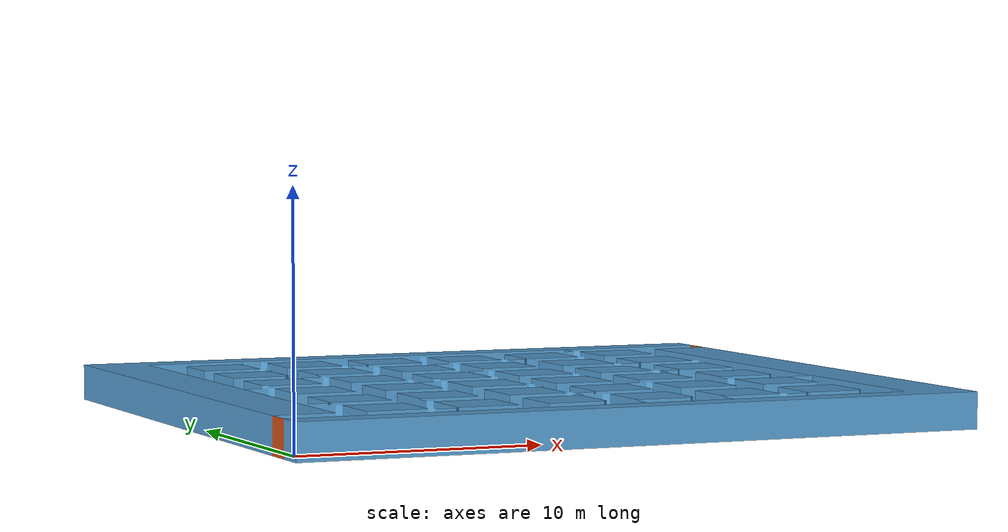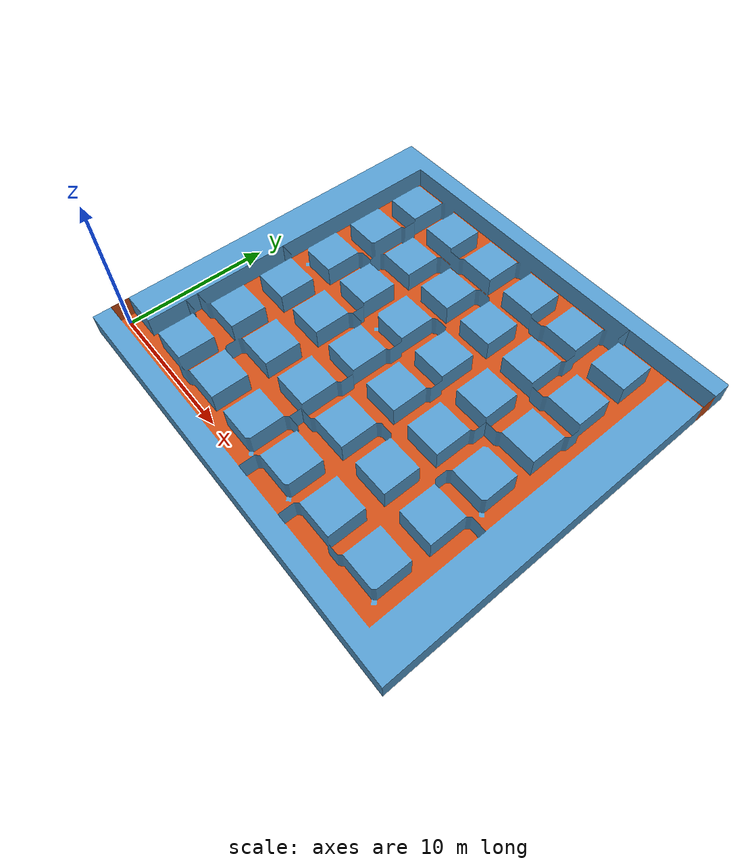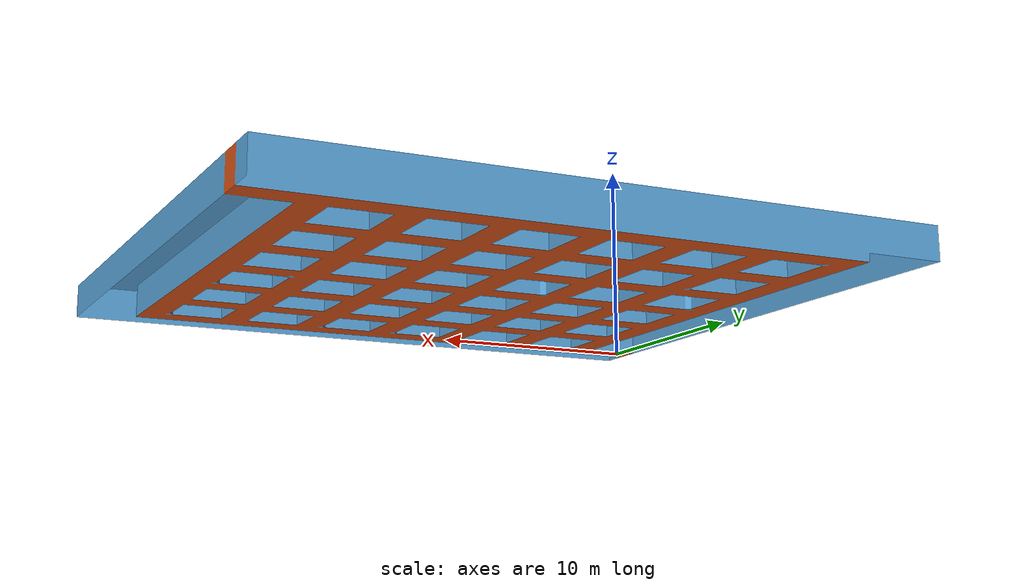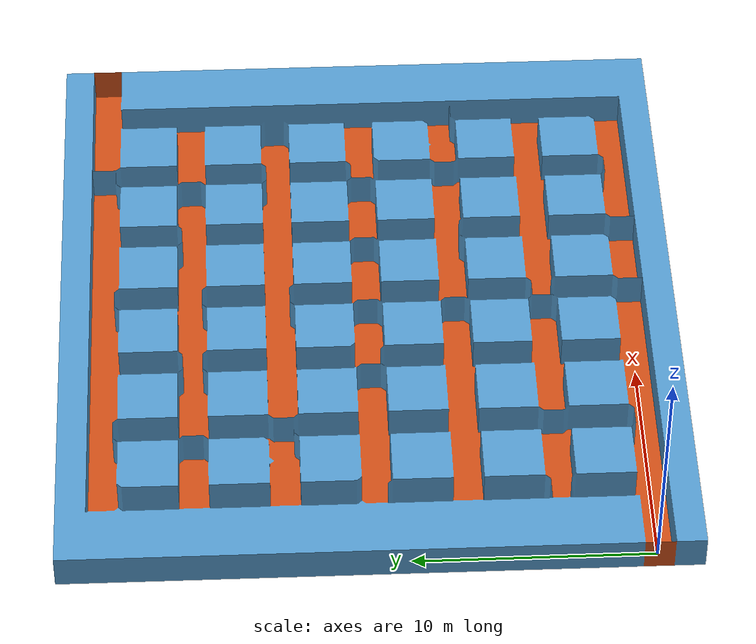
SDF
<sdf version='1.5'>
  <!-- Draw Model -->
  <model name="mazev10">
    <static>true</static>
    <link name="mazev10">
      <collision name="collision">
        <geometry>
          <mesh>
            <uri>model://turtlebot3_maze2/mazev10/mazev10.stl</uri>
          </mesh>
        </geometry>
      </collision>

      <visual name="visual">
        <geometry>
          <mesh>
            <uri>model://turtlebot3_maze2/mazev10/mazev10.dae</uri>
          </mesh>
        </geometry>
      </visual>
    </link>
  </model>
</sdf>
